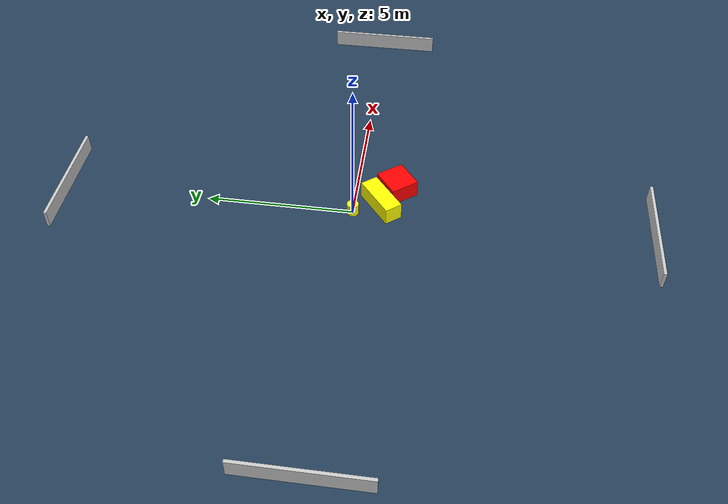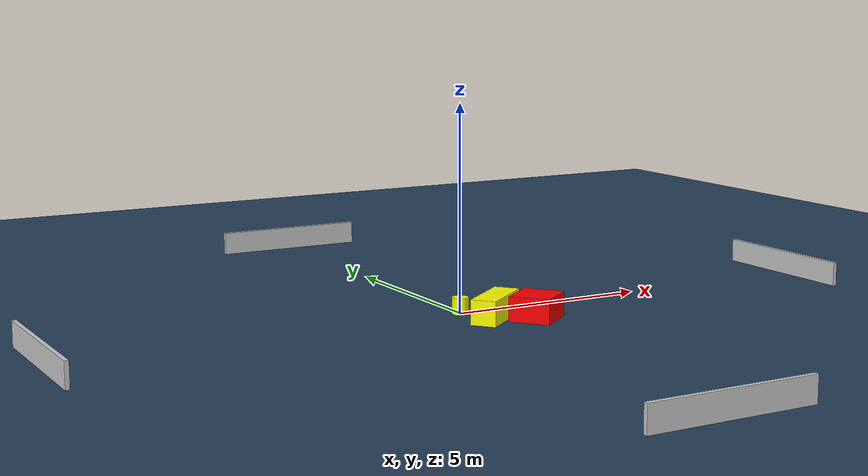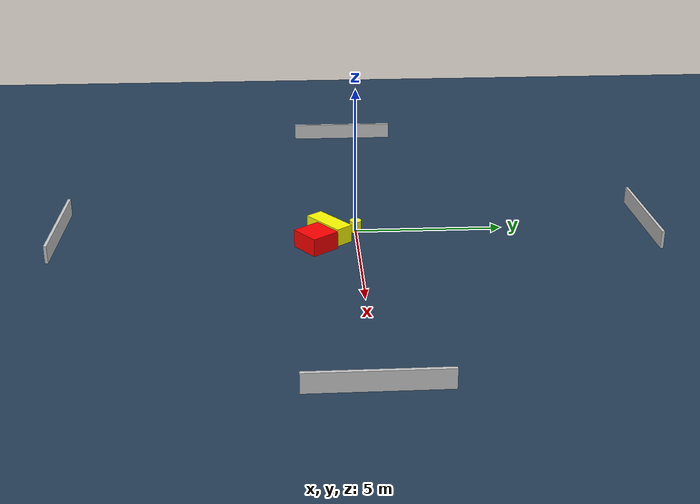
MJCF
<?xml version="1.0" ?>
<mujoco model="generated_environment">
  <option timestep="0.01" integrator="RK4" cone="elliptic"/>
  <default>
    <geom density="1"/>
  </default>
  <asset>
    <texture builtin="gradient" height="3072" name="skybox" rgb1="0.3 0.5 0.7" rgb2="0 0 0" type="skybox" width="512"/>
    <texture builtin="checker" height="300" name="groundplane" rgb1="0.2 0.3 0.4" rgb2="0.1 0.2 0.3" type="2d" width="300"/>
    <material name="groundplane" reflectance="0.2" texrepeat="5 5" texture="groundplane"/>
  </asset>
  <worldbody>
    <light dir="0 0 -1" directional="true" pos="0 0 1.5"/>
    <geom condim="3" friction="0.5 0.005 0.001" material="groundplane" name="floor" pos="0 0 0" size="0 0 0.05" type="plane"/>
    <body name="walls">
      <geom name="wall_1" condim="4" pos="-10.0 0.0 0.3" rgba="0.800000011920929 0.800000011920929 0.800000011920929 1.0" size="0.05 2.0 0.3" type="box"/>
      <geom name="wall_2" condim="4" pos="10.0 0.0 0.3" rgba="0.800000011920929 0.800000011920929 0.800000011920929 1.0" size="0.05 2.0 0.3" type="box"/>
      <geom name="wall_3" condim="4" pos="0.0 -10.0 0.3" rgba="0.800000011920929 0.800000011920929 0.800000011920929 1.0" size="2.0 0.05 0.3" type="box"/>
      <geom name="wall_4" condim="4" pos="0.0 10.0 0.3" rgba="0.800000011920929 0.800000011920929 0.800000011920929 1.0" size="2.0 0.05 0.3" type="box"/>
    </body>
    <body name="robot">
      <joint name="joint_x" type="slide" pos="0 0 0" axis="1 0 0"/>
      <joint name="joint_y" type="slide" pos="0 0 0" axis="0 1 0"/>
      <geom name="robot" type="cylinder" pos="0.0 0.0 0.2" size="0.2 0.2 0.0" mass="5.0" friction="1.0 0.005 0.0001" condim="4" rgba="1.0 1.0 0.0 1.0"/>
    </body>
    <body name="obstacle_1_movable">
      <geom name="obstacle_1_movable" condim="4" pos="0.4168592747751404 -0.9115255930952976 0.3" euler="0 0 38.27670979738478" friction="0.0 0.005 0.001" rgba="1.0 1.0 0.0 1.0" size="0.7953130635663894 0.30651461436917127 0.3" type="box" mass="0.1"/>
      <joint type="free"/>
    </body>
    <body name="obstacle_2_static">
      <geom name="obstacle_2_static" condim="4" pos="1.269976137723391 -1.3765348037227325 0.3" euler="0 0 37.33595503798328" friction="0.0 0.005 0.001" rgba="1.0 0.0 0.0 1.0" size="0.5266881034485835 0.4983077226668027 0.3" type="box"/>
    </body>
  </worldbody>
  <actuator>
    <motor name="actuator_x" joint="joint_x" gear="1" ctrlrange="-1 1"/>
    <motor name="actuator_y" joint="joint_y" gear="1" ctrlrange="-1 1"/>
  </actuator>
</mujoco>
